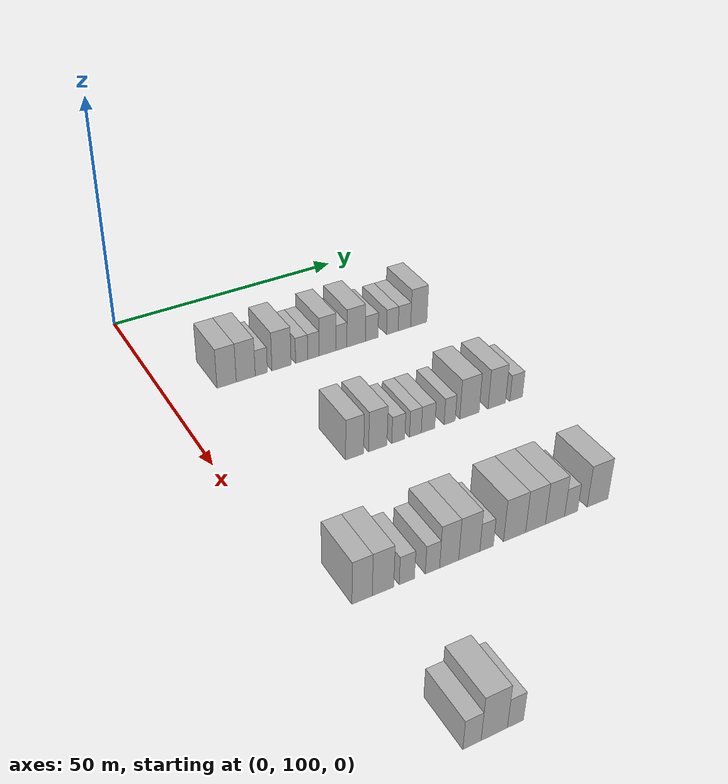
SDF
<sdf version="1.6">
 <world name="default">
  <model name="building_137">
   <static>1</static>
   <pose>25.0000 111.7239 0 0.000000 0.000000 0.000000</pose>
   <link name="link">
    <pose>0 0 4.50 0 0 0</pose>
    <collision name="collision"><geometry><box><size>10.0000 4.0287 9.0000</size></box></geometry></collision>
    <visual name="visual">
     <cast_shadows>0</cast_shadows>
     <geometry><box><size>10.0000 4.0287 9.0000</size></box></geometry>
     <material>
      <script>
       <uri>model://HANNAS_wall/materials/scripts</uri>
       <uri>model://HANNAS_wall/materials/textures</uri>
       <name>vrc/HANNAS_wall</name>
      </script>
     </material>
    </visual>
   </link>
  </model>
  <model name="building_138">
   <static>1</static>
   <pose>25.0000 115.7537 0 0.000000 0.000000 0.000000</pose>
   <link name="link">
    <pose>0 0 4.50 0 0 0</pose>
    <collision name="collision"><geometry><box><size>10.0000 4.0309 9.0000</size></box></geometry></collision>
    <visual name="visual">
     <cast_shadows>0</cast_shadows>
     <geometry><box><size>10.0000 4.0309 9.0000</size></box></geometry>
     <material>
      <script>
       <uri>model://HANNAS_wall/materials/scripts</uri>
       <uri>model://HANNAS_wall/materials/textures</uri>
       <name>vrc/HANNAS_wall</name>
      </script>
     </material>
    </visual>
   </link>
  </model>
  <model name="building_139">
   <static>1</static>
   <pose>25.0000 119.0655 0 0.000000 0.000000 0.000000</pose>
   <link name="link">
    <pose>0 0 3.00 0 0 0</pose>
    <collision name="collision"><geometry><box><size>10.0000 2.5926 6.0000</size></box></geometry></collision>
    <visual name="visual">
     <cast_shadows>0</cast_shadows>
     <geometry><box><size>10.0000 2.5926 6.0000</size></box></geometry>
     <material>
      <script>
       <uri>model://HANNAS_wall/materials/scripts</uri>
       <uri>model://HANNAS_wall/materials/textures</uri>
       <name>vrc/HANNAS_wall</name>
      </script>
     </material>
    </visual>
   </link>
  </model>
  <model name="building_140">
   <static>1</static>
   <pose>25.0000 123.4380 0 0.000000 0.000000 0.000000</pose>
   <link name="link">
    <pose>0 0 4.50 0 0 0</pose>
    <collision name="collision"><geometry><box><size>10.0000 4.1525 9.0000</size></box></geometry></collision>
    <visual name="visual">
     <cast_shadows>0</cast_shadows>
     <geometry><box><size>10.0000 4.1525 9.0000</size></box></geometry>
     <material>
      <script>
       <uri>model://HANNAS_wall/materials/scripts</uri>
       <uri>model://HANNAS_wall/materials/textures</uri>
       <name>vrc/HANNAS_wall</name>
      </script>
     </material>
    </visual>
   </link>
  </model>
  <model name="building_141">
   <static>1</static>
   <pose>25.0000 127.8482 0 0.000000 0.000000 0.000000</pose>
   <link name="link">
    <pose>0 0 3.00 0 0 0</pose>
    <collision name="collision"><geometry><box><size>10.0000 2.6678 6.0000</size></box></geometry></collision>
    <visual name="visual">
     <cast_shadows>0</cast_shadows>
     <geometry><box><size>10.0000 2.6678 6.0000</size></box></geometry>
     <material>
      <script>
       <uri>model://HANNAS_wall/materials/scripts</uri>
       <uri>model://HANNAS_wall/materials/textures</uri>
       <name>vrc/HANNAS_wall</name>
      </script>
     </material>
    </visual>
   </link>
  </model>
  <model name="building_142">
   <static>1</static>
   <pose>25.0000 130.4486 0 0.000000 0.000000 0.000000</pose>
   <link name="link">
    <pose>0 0 3.00 0 0 0</pose>
    <collision name="collision"><geometry><box><size>10.0000 2.5331 6.0000</size></box></geometry></collision>
    <visual name="visual">
     <cast_shadows>0</cast_shadows>
     <geometry><box><size>10.0000 2.5331 6.0000</size></box></geometry>
     <material>
      <script>
       <uri>model://HANNAS_wall/materials/scripts</uri>
       <uri>model://HANNAS_wall/materials/textures</uri>
       <name>vrc/HANNAS_wall</name>
      </script>
     </material>
    </visual>
   </link>
  </model>
  <model name="building_143">
   <static>1</static>
   <pose>25.0000 133.6512 0 0.000000 0.000000 0.000000</pose>
   <link name="link">
    <pose>0 0 4.50 0 0 0</pose>
    <collision name="collision"><geometry><box><size>10.0000 3.8720 9.0000</size></box></geometry></collision>
    <visual name="visual">
     <cast_shadows>0</cast_shadows>
     <geometry><box><size>10.0000 3.8720 9.0000</size></box></geometry>
     <material>
      <script>
       <uri>model://HANNAS_wall/materials/scripts</uri>
       <uri>model://HANNAS_wall/materials/textures</uri>
       <name>vrc/HANNAS_wall</name>
      </script>
     </material>
    </visual>
   </link>
  </model>
  <model name="building_144">
   <static>1</static>
   <pose>25.0000 136.7945 0 0.000000 0.000000 0.000000</pose>
   <link name="link">
    <pose>0 0 3.00 0 0 0</pose>
    <collision name="collision"><geometry><box><size>10.0000 2.4147 6.0000</size></box></geometry></collision>
    <visual name="visual">
     <cast_shadows>0</cast_shadows>
     <geometry><box><size>10.0000 2.4147 6.0000</size></box></geometry>
     <material>
      <script>
       <uri>model://HANNAS_wall/materials/scripts</uri>
       <uri>model://HANNAS_wall/materials/textures</uri>
       <name>vrc/HANNAS_wall</name>
      </script>
     </material>
    </visual>
   </link>
  </model>
  <model name="building_145">
   <static>1</static>
   <pose>25.0000 140.1207 0 0.000000 0.000000 0.000000</pose>
   <link name="link">
    <pose>0 0 4.50 0 0 0</pose>
    <collision name="collision"><geometry><box><size>10.0000 4.2376 9.0000</size></box></geometry></collision>
    <visual name="visual">
     <cast_shadows>0</cast_shadows>
     <geometry><box><size>10.0000 4.2376 9.0000</size></box></geometry>
     <material>
      <script>
       <uri>model://HANNAS_wall/materials/scripts</uri>
       <uri>model://HANNAS_wall/materials/textures</uri>
       <name>vrc/HANNAS_wall</name>
      </script>
     </material>
    </visual>
   </link>
  </model>
  <model name="building_146">
   <static>1</static>
   <pose>25.0000 143.7245 0 0.000000 0.000000 0.000000</pose>
   <link name="link">
    <pose>0 0 3.00 0 0 0</pose>
    <collision name="collision"><geometry><box><size>10.0000 2.9699 6.0000</size></box></geometry></collision>
    <visual name="visual">
     <cast_shadows>0</cast_shadows>
     <geometry><box><size>10.0000 2.9699 6.0000</size></box></geometry>
     <material>
      <script>
       <uri>model://HANNAS_wall/materials/scripts</uri>
       <uri>model://HANNAS_wall/materials/textures</uri>
       <name>vrc/HANNAS_wall</name>
      </script>
     </material>
    </visual>
   </link>
  </model>
  <model name="building_147">
   <static>1</static>
   <pose>25.0000 148.5768 0 0.000000 0.000000 0.000000</pose>
   <link name="link">
    <pose>0 0 3.00 0 0 0</pose>
    <collision name="collision"><geometry><box><size>10.0000 2.7347 6.0000</size></box></geometry></collision>
    <visual name="visual">
     <cast_shadows>0</cast_shadows>
     <geometry><box><size>10.0000 2.7347 6.0000</size></box></geometry>
     <material>
      <script>
       <uri>model://HANNAS_wall/materials/scripts</uri>
       <uri>model://HANNAS_wall/materials/textures</uri>
       <name>vrc/HANNAS_wall</name>
      </script>
     </material>
    </visual>
   </link>
  </model>
  <model name="building_148">
   <static>1</static>
   <pose>25.0000 151.4336 0 0.000000 0.000000 0.000000</pose>
   <link name="link">
    <pose>0 0 3.00 0 0 0</pose>
    <collision name="collision"><geometry><box><size>10.0000 2.9789 6.0000</size></box></geometry></collision>
    <visual name="visual">
     <cast_shadows>0</cast_shadows>
     <geometry><box><size>10.0000 2.9789 6.0000</size></box></geometry>
     <material>
      <script>
       <uri>model://HANNAS_wall/materials/scripts</uri>
       <uri>model://HANNAS_wall/materials/textures</uri>
       <name>vrc/HANNAS_wall</name>
      </script>
     </material>
    </visual>
   </link>
  </model>
  <model name="building_149">
   <static>1</static>
   <pose>25.0000 154.8804 0 0.000000 0.000000 0.000000</pose>
   <link name="link">
    <pose>0 0 4.50 0 0 0</pose>
    <collision name="collision"><geometry><box><size>10.0000 3.9148 9.0000</size></box></geometry></collision>
    <visual name="visual">
     <cast_shadows>0</cast_shadows>
     <geometry><box><size>10.0000 3.9148 9.0000</size></box></geometry>
     <material>
      <script>
       <uri>model://HANNAS_wall/materials/scripts</uri>
       <uri>model://HANNAS_wall/materials/textures</uri>
       <name>vrc/HANNAS_wall</name>
      </script>
     </material>
    </visual>
   </link>
  </model>
  <model name="building_352">
   <static>1</static>
   <pose>55.0000 123.0382 0 0.000000 0.000000 0.000000</pose>
   <link name="link">
    <pose>0 0 4.50 0 0 0</pose>
    <collision name="collision"><geometry><box><size>10.0000 3.6757 9.0000</size></box></geometry></collision>
    <visual name="visual">
     <cast_shadows>0</cast_shadows>
     <geometry><box><size>10.0000 3.6757 9.0000</size></box></geometry>
     <material>
      <script>
       <uri>model://HANNAS_wall/materials/scripts</uri>
       <uri>model://HANNAS_wall/materials/textures</uri>
       <name>vrc/HANNAS_wall</name>
      </script>
     </material>
    </visual>
   </link>
  </model>
  <model name="building_353">
   <static>1</static>
   <pose>55.0000 127.7709 0 0.000000 0.000000 0.000000</pose>
   <link name="link">
    <pose>0 0 4.50 0 0 0</pose>
    <collision name="collision"><geometry><box><size>10.0000 3.7898 9.0000</size></box></geometry></collision>
    <visual name="visual">
     <cast_shadows>0</cast_shadows>
     <geometry><box><size>10.0000 3.7898 9.0000</size></box></geometry>
     <material>
      <script>
       <uri>model://HANNAS_wall/materials/scripts</uri>
       <uri>model://HANNAS_wall/materials/textures</uri>
       <name>vrc/HANNAS_wall</name>
      </script>
     </material>
    </visual>
   </link>
  </model>
  <model name="building_354">
   <static>1</static>
   <pose>55.0000 132.0283 0 0.000000 0.000000 0.000000</pose>
   <link name="link">
    <pose>0 0 3.00 0 0 0</pose>
    <collision name="collision"><geometry><box><size>10.0000 2.7251 6.0000</size></box></geometry></collision>
    <visual name="visual">
     <cast_shadows>0</cast_shadows>
     <geometry><box><size>10.0000 2.7251 6.0000</size></box></geometry>
     <material>
      <script>
       <uri>model://HANNAS_wall/materials/scripts</uri>
       <uri>model://HANNAS_wall/materials/textures</uri>
       <name>vrc/HANNAS_wall</name>
      </script>
     </material>
    </visual>
   </link>
  </model>
  <model name="building_355">
   <static>1</static>
   <pose>55.0000 135.6387 0 0.000000 0.000000 0.000000</pose>
   <link name="link">
    <pose>0 0 3.00 0 0 0</pose>
    <collision name="collision"><geometry><box><size>10.0000 2.4956 6.0000</size></box></geometry></collision>
    <visual name="visual">
     <cast_shadows>0</cast_shadows>
     <geometry><box><size>10.0000 2.4956 6.0000</size></box></geometry>
     <material>
      <script>
       <uri>model://HANNAS_wall/materials/scripts</uri>
       <uri>model://HANNAS_wall/materials/textures</uri>
       <name>vrc/HANNAS_wall</name>
      </script>
     </material>
    </visual>
   </link>
  </model>
  <model name="building_356">
   <static>1</static>
   <pose>55.0000 138.3416 0 0.000000 0.000000 0.000000</pose>
   <link name="link">
    <pose>0 0 3.00 0 0 0</pose>
    <collision name="collision"><geometry><box><size>10.0000 2.9103 6.0000</size></box></geometry></collision>
    <visual name="visual">
     <cast_shadows>0</cast_shadows>
     <geometry><box><size>10.0000 2.9103 6.0000</size></box></geometry>
     <material>
      <script>
       <uri>model://HANNAS_wall/materials/scripts</uri>
       <uri>model://HANNAS_wall/materials/textures</uri>
       <name>vrc/HANNAS_wall</name>
      </script>
     </material>
    </visual>
   </link>
  </model>
  <model name="building_357">
   <static>1</static>
   <pose>55.0000 143.0167 0 0.000000 0.000000 0.000000</pose>
   <link name="link">
    <pose>0 0 3.00 0 0 0</pose>
    <collision name="collision"><geometry><box><size>10.0000 2.4399 6.0000</size></box></geometry></collision>
    <visual name="visual">
     <cast_shadows>0</cast_shadows>
     <geometry><box><size>10.0000 2.4399 6.0000</size></box></geometry>
     <material>
      <script>
       <uri>model://HANNAS_wall/materials/scripts</uri>
       <uri>model://HANNAS_wall/materials/textures</uri>
       <name>vrc/HANNAS_wall</name>
      </script>
     </material>
    </visual>
   </link>
  </model>
  <model name="building_358">
   <static>1</static>
   <pose>55.0000 147.3790 0 0.000000 0.000000 0.000000</pose>
   <link name="link">
    <pose>0 0 4.50 0 0 0</pose>
    <collision name="collision"><geometry><box><size>10.0000 4.2846 9.0000</size></box></geometry></collision>
    <visual name="visual">
     <cast_shadows>0</cast_shadows>
     <geometry><box><size>10.0000 4.2846 9.0000</size></box></geometry>
     <material>
      <script>
       <uri>model://HANNAS_wall/materials/scripts</uri>
       <uri>model://HANNAS_wall/materials/textures</uri>
       <name>vrc/HANNAS_wall</name>
      </script>
     </material>
    </visual>
   </link>
  </model>
  <model name="building_359">
   <static>1</static>
   <pose>55.0000 153.4960 0 0.000000 0.000000 0.000000</pose>
   <link name="link">
    <pose>0 0 4.50 0 0 0</pose>
    <collision name="collision"><geometry><box><size>10.0000 3.9495 9.0000</size></box></geometry></collision>
    <visual name="visual">
     <cast_shadows>0</cast_shadows>
     <geometry><box><size>10.0000 3.9495 9.0000</size></box></geometry>
     <material>
      <script>
       <uri>model://HANNAS_wall/materials/scripts</uri>
       <uri>model://HANNAS_wall/materials/textures</uri>
       <name>vrc/HANNAS_wall</name>
      </script>
     </material>
    </visual>
   </link>
  </model>
  <model name="building_360">
   <static>1</static>
   <pose>55.0000 157.9174 0 0.000000 0.000000 0.000000</pose>
   <link name="link">
    <pose>0 0 3.00 0 0 0</pose>
    <collision name="collision"><geometry><box><size>10.0000 2.8933 6.0000</size></box></geometry></collision>
    <visual name="visual">
     <cast_shadows>0</cast_shadows>
     <geometry><box><size>10.0000 2.8933 6.0000</size></box></geometry>
     <material>
      <script>
       <uri>model://HANNAS_wall/materials/scripts</uri>
       <uri>model://HANNAS_wall/materials/textures</uri>
       <name>vrc/HANNAS_wall</name>
      </script>
     </material>
    </visual>
   </link>
  </model>
  <model name="building_583">
   <static>1</static>
   <pose>85.0000 107.5862 0 0.000000 0.000000 0.000000</pose>
   <link name="link">
    <pose>0 0 4.50 0 0 0</pose>
    <collision name="collision"><geometry><box><size>10.0000 3.6009 9.0000</size></box></geometry></collision>
    <visual name="visual">
     <cast_shadows>0</cast_shadows>
     <geometry><box><size>10.0000 3.6009 9.0000</size></box></geometry>
     <material>
      <script>
       <uri>model://HANNAS_wall/materials/scripts</uri>
       <uri>model://HANNAS_wall/materials/textures</uri>
       <name>vrc/HANNAS_wall</name>
      </script>
     </material>
    </visual>
   </link>
  </model>
  <model name="building_584">
   <static>1</static>
   <pose>85.0000 111.3120 0 0.000000 0.000000 0.000000</pose>
   <link name="link">
    <pose>0 0 4.50 0 0 0</pose>
    <collision name="collision"><geometry><box><size>10.0000 3.8509 9.0000</size></box></geometry></collision>
    <visual name="visual">
     <cast_shadows>0</cast_shadows>
     <geometry><box><size>10.0000 3.8509 9.0000</size></box></geometry>
     <material>
      <script>
       <uri>model://HANNAS_wall/materials/scripts</uri>
       <uri>model://HANNAS_wall/materials/textures</uri>
       <name>vrc/HANNAS_wall</name>
      </script>
     </material>
    </visual>
   </link>
  </model>
  <model name="building_585">
   <static>1</static>
   <pose>85.0000 115.6415 0 0.000000 0.000000 0.000000</pose>
   <link name="link">
    <pose>0 0 3.00 0 0 0</pose>
    <collision name="collision"><geometry><box><size>10.0000 2.8079 6.0000</size></box></geometry></collision>
    <visual name="visual">
     <cast_shadows>0</cast_shadows>
     <geometry><box><size>10.0000 2.8079 6.0000</size></box></geometry>
     <material>
      <script>
       <uri>model://HANNAS_wall/materials/scripts</uri>
       <uri>model://HANNAS_wall/materials/textures</uri>
       <name>vrc/HANNAS_wall</name>
      </script>
     </material>
    </visual>
   </link>
  </model>
  <model name="building_586">
   <static>1</static>
   <pose>85.0000 120.3838 0 0.000000 0.000000 0.000000</pose>
   <link name="link">
    <pose>0 0 3.00 0 0 0</pose>
    <collision name="collision"><geometry><box><size>10.0000 2.6769 6.0000</size></box></geometry></collision>
    <visual name="visual">
     <cast_shadows>0</cast_shadows>
     <geometry><box><size>10.0000 2.6769 6.0000</size></box></geometry>
     <material>
      <script>
       <uri>model://HANNAS_wall/materials/scripts</uri>
       <uri>model://HANNAS_wall/materials/textures</uri>
       <name>vrc/HANNAS_wall</name>
      </script>
     </material>
    </visual>
   </link>
  </model>
  <model name="building_587">
   <static>1</static>
   <pose>85.0000 123.5315 0 0.000000 0.000000 0.000000</pose>
   <link name="link">
    <pose>0 0 4.50 0 0 0</pose>
    <collision name="collision"><geometry><box><size>10.0000 3.6185 9.0000</size></box></geometry></collision>
    <visual name="visual">
     <cast_shadows>0</cast_shadows>
     <geometry><box><size>10.0000 3.6185 9.0000</size></box></geometry>
     <material>
      <script>
       <uri>model://HANNAS_wall/materials/scripts</uri>
       <uri>model://HANNAS_wall/materials/textures</uri>
       <name>vrc/HANNAS_wall</name>
      </script>
     </material>
    </visual>
   </link>
  </model>
  <model name="building_588">
   <static>1</static>
   <pose>85.0000 127.3667 0 0.000000 0.000000 0.000000</pose>
   <link name="link">
    <pose>0 0 4.50 0 0 0</pose>
    <collision name="collision"><geometry><box><size>10.0000 4.0519 9.0000</size></box></geometry></collision>
    <visual name="visual">
     <cast_shadows>0</cast_shadows>
     <geometry><box><size>10.0000 4.0519 9.0000</size></box></geometry>
     <material>
      <script>
       <uri>model://HANNAS_wall/materials/scripts</uri>
       <uri>model://HANNAS_wall/materials/textures</uri>
       <name>vrc/HANNAS_wall</name>
      </script>
     </material>
    </visual>
   </link>
  </model>
  <model name="building_589">
   <static>1</static>
   <pose>85.0000 130.7123 0 0.000000 0.000000 0.000000</pose>
   <link name="link">
    <pose>0 0 3.00 0 0 0</pose>
    <collision name="collision"><geometry><box><size>10.0000 2.6392 6.0000</size></box></geometry></collision>
    <visual name="visual">
     <cast_shadows>0</cast_shadows>
     <geometry><box><size>10.0000 2.6392 6.0000</size></box></geometry>
     <material>
      <script>
       <uri>model://HANNAS_wall/materials/scripts</uri>
       <uri>model://HANNAS_wall/materials/textures</uri>
       <name>vrc/HANNAS_wall</name>
      </script>
     </material>
    </visual>
   </link>
  </model>
  <model name="building_590">
   <static>1</static>
   <pose>85.0000 136.2283 0 0.000000 0.000000 0.000000</pose>
   <link name="link">
    <pose>0 0 4.50 0 0 0</pose>
    <collision name="collision"><geometry><box><size>10.0000 4.3928 9.0000</size></box></geometry></collision>
    <visual name="visual">
     <cast_shadows>0</cast_shadows>
     <geometry><box><size>10.0000 4.3928 9.0000</size></box></geometry>
     <material>
      <script>
       <uri>model://HANNAS_wall/materials/scripts</uri>
       <uri>model://HANNAS_wall/materials/textures</uri>
       <name>vrc/HANNAS_wall</name>
      </script>
     </material>
    </visual>
   </link>
  </model>
  <model name="building_591">
   <static>1</static>
   <pose>85.0000 140.4376 0 0.000000 0.000000 0.000000</pose>
   <link name="link">
    <pose>0 0 4.50 0 0 0</pose>
    <collision name="collision"><geometry><box><size>10.0000 4.0258 9.0000</size></box></geometry></collision>
    <visual name="visual">
     <cast_shadows>0</cast_shadows>
     <geometry><box><size>10.0000 4.0258 9.0000</size></box></geometry>
     <material>
      <script>
       <uri>model://HANNAS_wall/materials/scripts</uri>
       <uri>model://HANNAS_wall/materials/textures</uri>
       <name>vrc/HANNAS_wall</name>
      </script>
     </material>
    </visual>
   </link>
  </model>
  <model name="building_592">
   <static>1</static>
   <pose>85.0000 144.4129 0 0.000000 0.000000 0.000000</pose>
   <link name="link">
    <pose>0 0 4.50 0 0 0</pose>
    <collision name="collision"><geometry><box><size>10.0000 3.9248 9.0000</size></box></geometry></collision>
    <visual name="visual">
     <cast_shadows>0</cast_shadows>
     <geometry><box><size>10.0000 3.9248 9.0000</size></box></geometry>
     <material>
      <script>
       <uri>model://HANNAS_wall/materials/scripts</uri>
       <uri>model://HANNAS_wall/materials/textures</uri>
       <name>vrc/HANNAS_wall</name>
      </script>
     </material>
    </visual>
   </link>
  </model>
  <model name="building_593">
   <static>1</static>
   <pose>85.0000 147.7341 0 0.000000 0.000000 0.000000</pose>
   <link name="link">
    <pose>0 0 3.00 0 0 0</pose>
    <collision name="collision"><geometry><box><size>10.0000 2.7175 6.0000</size></box></geometry></collision>
    <visual name="visual">
     <cast_shadows>0</cast_shadows>
     <geometry><box><size>10.0000 2.7175 6.0000</size></box></geometry>
     <material>
      <script>
       <uri>model://HANNAS_wall/materials/scripts</uri>
       <uri>model://HANNAS_wall/materials/textures</uri>
       <name>vrc/HANNAS_wall</name>
      </script>
     </material>
    </visual>
   </link>
  </model>
  <model name="building_594">
   <static>1</static>
   <pose>85.0000 153.3074 0 0.000000 0.000000 0.000000</pose>
   <link name="link">
    <pose>0 0 4.50 0 0 0</pose>
    <collision name="collision"><geometry><box><size>10.0000 4.4291 9.0000</size></box></geometry></collision>
    <visual name="visual">
     <cast_shadows>0</cast_shadows>
     <geometry><box><size>10.0000 4.4291 9.0000</size></box></geometry>
     <material>
      <script>
       <uri>model://HANNAS_wall/materials/scripts</uri>
       <uri>model://HANNAS_wall/materials/textures</uri>
       <name>vrc/HANNAS_wall</name>
      </script>
     </material>
    </visual>
   </link>
  </model>
  <model name="building_808">
   <static>1</static>
   <pose>115.0000 107.8221 0 0.000000 0.000000 0.000000</pose>
   <link name="link">
    <pose>0 0 3.00 0 0 0</pose>
    <collision name="collision"><geometry><box><size>10.0000 2.9863 6.0000</size></box></geometry></collision>
    <visual name="visual">
     <cast_shadows>0</cast_shadows>
     <geometry><box><size>10.0000 2.9863 6.0000</size></box></geometry>
     <material>
      <script>
       <uri>model://HANNAS_wall/materials/scripts</uri>
       <uri>model://HANNAS_wall/materials/textures</uri>
       <name>vrc/HANNAS_wall</name>
      </script>
     </material>
    </visual>
   </link>
  </model>
  <model name="building_809">
   <static>1</static>
   <pose>115.0000 111.4962 0 0.000000 0.000000 0.000000</pose>
   <link name="link">
    <pose>0 0 4.50 0 0 0</pose>
    <collision name="collision"><geometry><box><size>10.0000 4.3618 9.0000</size></box></geometry></collision>
    <visual name="visual">
     <cast_shadows>0</cast_shadows>
     <geometry><box><size>10.0000 4.3618 9.0000</size></box></geometry>
     <material>
      <script>
       <uri>model://HANNAS_wall/materials/scripts</uri>
       <uri>model://HANNAS_wall/materials/textures</uri>
       <name>vrc/HANNAS_wall</name>
      </script>
     </material>
    </visual>
   </link>
  </model>
  <model name="building_810">
   <static>1</static>
   <pose>115.0000 115.0393 0 0.000000 0.000000 0.000000</pose>
   <link name="link">
    <pose>0 0 3.00 0 0 0</pose>
    <collision name="collision"><geometry><box><size>10.0000 2.7244 6.0000</size></box></geometry></collision>
    <visual name="visual">
     <cast_shadows>0</cast_shadows>
     <geometry><box><size>10.0000 2.7244 6.0000</size></box></geometry>
     <material>
      <script>
       <uri>model://HANNAS_wall/materials/scripts</uri>
       <uri>model://HANNAS_wall/materials/textures</uri>
       <name>vrc/HANNAS_wall</name>
      </script>
     </material>
    </visual>
   </link>
  </model>
 </world>
</sdf>
